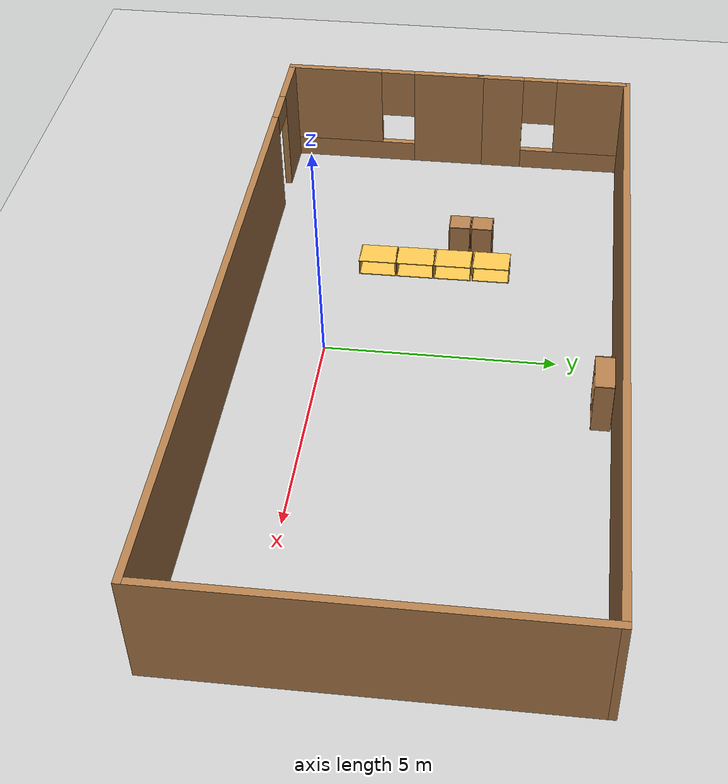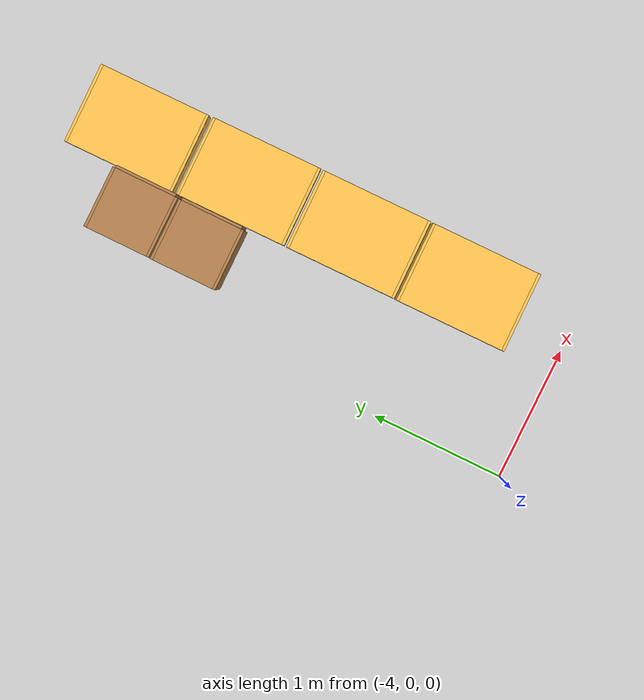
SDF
<sdf version="1.7">
 <world name="default">
  <model name="ground_plane">
   <pose>0 0 0 0 -0 1</pose>
   <static>1</static>
   <link name="link">
    <collision name="collision">
     <geometry><plane><normal>0 0 1</normal><size>100 100</size></plane></geometry>
     <surface>
      <contact><collide_bitmask>65535</collide_bitmask></contact>
      <friction><ode><mu>100</mu><mu2>50</mu2></ode></friction>
     </surface>
    </collision>
    <visual name="visual">
     <cast_shadows>0</cast_shadows>
     <geometry><plane><normal>0 0 1</normal><size>100 100</size></plane></geometry>
     <material>
      <script><uri>file://media/materials/scripts/gazebo.material</uri><name>Gazebo/Grey</name></script>
     </material>
    </visual>
   </link>
  </model>
  <model name="library">
   <pose>0.605 2.21 0 0 -0 0</pose>
   <link name="Wall_18">
    <pose>-7.925 -1.75 0 0 -0 -1.5708</pose>
    <visual name="Wall_18_Visual_0">
     <pose>-1.53224 0 1.25 0 -0 0</pose>
     <geometry><box><size>1.68552 0.15 2.5</size></box></geometry>
     <material>
      <script><uri>file://media/materials/scripts/gazebo.material</uri><name>Gazebo/Wood</name></script>
      <ambient>1 1 1 1</ambient>
     </material>
     <meta><layer>0</layer></meta>
    </visual>
    <collision name="Wall_18_Collision_0">
     <geometry><box><size>1.68552 0.15 2.5</size></box></geometry>
     <pose>-1.53224 0 1.25 0 -0 0</pose>
    </collision>
    <visual name="Wall_18_Visual_1">
     <pose>0.84276 0 0.25 0 -0 0</pose>
     <geometry><box><size>3.06448 0.15 0.5</size></box></geometry>
     <material>
      <script><uri>file://media/materials/scripts/gazebo.material</uri><name>Gazebo/Wood</name></script>
      <ambient>1 1 1 1</ambient>
     </material>
     <meta><layer>0</layer></meta>
    </visual>
    <collision name="Wall_18_Collision_1">
     <geometry><box><size>3.06448 0.15 0.5</size></box></geometry>
     <pose>0.84276 0 0.25 0 -0 0</pose>
    </collision>
    <visual name="Wall_18_Visual_2">
     <pose>1.24276 0 1.5 0 -0 0</pose>
     <geometry><box><size>2.26448 0.15 2</size></box></geometry>
     <material>
      <script><uri>file://media/materials/scripts/gazebo.material</uri><name>Gazebo/Wood</name></script>
      <ambient>1 1 1 1</ambient>
     </material>
     <meta><layer>0</layer></meta>
    </visual>
    <collision name="Wall_18_Collision_2">
     <geometry><box><size>2.26448 0.15 2</size></box></geometry>
     <pose>1.24276 0 1.5 0 -0 0</pose>
    </collision>
    <visual name="Wall_18_Visual_3">
     <pose>-0.289481 0 1.9 0 -0 0</pose>
     <geometry><box><size>0.8 0.15 1.2</size></box></geometry>
     <material>
      <script><uri>file://media/materials/scripts/gazebo.material</uri><name>Gazebo/Wood</name></script>
      <ambient>1 1 1 1</ambient>
     </material>
     <meta><layer>0</layer></meta>
    </visual>
    <collision name="Wall_18_Collision_3">
     <geometry><box><size>0.8 0.15 1.2</size></box></geometry>
     <pose>-0.289481 0 1.9 0 -0 0</pose>
    </collision>
   </link>
   <link name="Wall_19">
    <pose>-0 -4.05 0 0 -0 0</pose>
    <visual name="Wall_19_Visual_0">
     <pose>-7.26557 0 1.25 0 -0 0</pose>
     <geometry><box><size>1.46886 0.15 2.5</size></box></geometry>
     <material>
      <script><uri>file://media/materials/scripts/gazebo.material</uri><name>Gazebo/Wood</name></script>
      <ambient>1 1 1 1</ambient>
     </material>
     <meta><layer>0</layer></meta>
    </visual>
    <collision name="Wall_19_Collision_0">
     <geometry><box><size>1.46886 0.15 2.5</size></box></geometry>
     <pose>-7.26557 0 1.25 0 -0 0</pose>
    </collision>
    <visual name="Wall_19_Visual_1">
     <pose>1.18443 0 1.25 0 -0 0</pose>
     <geometry><box><size>13.6311 0.15 2.5</size></box></geometry>
     <material>
      <script><uri>file://media/materials/scripts/gazebo.material</uri><name>Gazebo/Wood</name></script>
      <ambient>1 1 1 1</ambient>
     </material>
     <meta><layer>0</layer></meta>
    </visual>
    <collision name="Wall_19_Collision_1">
     <geometry><box><size>13.6311 0.15 2.5</size></box></geometry>
     <pose>1.18443 0 1.25 0 -0 0</pose>
    </collision>
    <visual name="Wall_19_Visual_2">
     <pose>-6.08114 0 2.25 0 -0 0</pose>
     <geometry><box><size>0.9 0.15 0.5</size></box></geometry>
     <material>
      <script><uri>file://media/materials/scripts/gazebo.material</uri><name>Gazebo/Wood</name></script>
      <ambient>1 1 1 1</ambient>
     </material>
     <meta><layer>0</layer></meta>
    </visual>
    <collision name="Wall_19_Collision_2">
     <geometry><box><size>0.9 0.15 0.5</size></box></geometry>
     <pose>-6.08114 0 2.25 0 -0 0</pose>
    </collision>
   </link>
   <link name="Wall_20">
    <collision name="Wall_20_Collision">
     <geometry><box><size>8.25 0.15 2.5</size></box></geometry>
     <pose>0 0 1.25 0 -0 0</pose>
    </collision>
    <visual name="Wall_20_Visual">
     <pose>0 0 1.25 0 -0 0</pose>
     <geometry><box><size>8.25 0.15 2.5</size></box></geometry>
     <material>
      <script><uri>file://media/materials/scripts/gazebo.material</uri><name>Gazebo/Wood</name></script>
      <ambient>1 1 1 1</ambient>
     </material>
     <meta><layer>0</layer></meta>
    </visual>
    <pose>7.925 0 0 0 -0 1.5708</pose>
   </link>
   <link name="Wall_21">
    <collision name="Wall_21_Collision">
     <geometry><box><size>16.0003 0.15 2.5</size></box></geometry>
     <pose>0 0 1.25 0 -0 0</pose>
    </collision>
    <visual name="Wall_21_Visual">
     <pose>0 0 1.25 0 -0 0</pose>
     <geometry><box><size>16.0003 0.15 2.5</size></box></geometry>
     <material>
      <script><uri>file://media/materials/scripts/gazebo.material</uri><name>Gazebo/Wood</name></script>
      <ambient>1 1 1 1</ambient>
     </material>
     <meta><layer>0</layer></meta>
    </visual>
    <pose>-0 4.05 0 0 -0 3.14159</pose>
   </link>
   <link name="Wall_24">
    <pose>-7.925 2.3 0 0 -0 1.5708</pose>
    <visual name="Wall_24_Visual_0">
     <pose>-1.26657 0 1.25 0 -0 0</pose>
     <geometry><box><size>1.11687 0.15 2.5</size></box></geometry>
     <material>
      <script><uri>file://media/materials/scripts/gazebo.material</uri><name>Gazebo/Wood</name></script>
      <ambient>1 1 1 1</ambient>
     </material>
     <meta><layer>0</layer></meta>
    </visual>
    <collision name="Wall_24_Collision_0">
     <geometry><box><size>1.11687 0.15 2.5</size></box></geometry>
     <pose>-1.26657 0 1.25 0 -0 0</pose>
    </collision>
    <visual name="Wall_24_Visual_1">
     <pose>0.558433 0 0.25 0 -0 0</pose>
     <geometry><box><size>2.53313 0.15 0.5</size></box></geometry>
     <material>
      <script><uri>file://media/materials/scripts/gazebo.material</uri><name>Gazebo/Wood</name></script>
      <ambient>1 1 1 1</ambient>
     </material>
     <meta><layer>0</layer></meta>
    </visual>
    <collision name="Wall_24_Collision_1">
     <geometry><box><size>2.53313 0.15 0.5</size></box></geometry>
     <pose>0.558433 0 0.25 0 -0 0</pose>
    </collision>
    <visual name="Wall_24_Visual_2">
     <pose>0.958433 0 1.5 0 -0 0</pose>
     <geometry><box><size>1.73313 0.15 2</size></box></geometry>
     <material>
      <script><uri>file://media/materials/scripts/gazebo.material</uri><name>Gazebo/Wood</name></script>
      <ambient>1 1 1 1</ambient>
     </material>
     <meta><layer>0</layer></meta>
    </visual>
    <collision name="Wall_24_Collision_2">
     <geometry><box><size>1.73313 0.15 2</size></box></geometry>
     <pose>0.958433 0 1.5 0 -0 0</pose>
    </collision>
    <visual name="Wall_24_Visual_3">
     <pose>-0.308134 0 1.9 0 -0 0</pose>
     <geometry><box><size>0.8 0.15 1.2</size></box></geometry>
     <material>
      <script><uri>file://media/materials/scripts/gazebo.material</uri><name>Gazebo/Wood</name></script>
      <ambient>1 1 1 1</ambient>
     </material>
     <meta><layer>0</layer></meta>
    </visual>
    <collision name="Wall_24_Collision_3">
     <geometry><box><size>0.8 0.15 1.2</size></box></geometry>
     <pose>-0.308134 0 1.9 0 -0 0</pose>
    </collision>
   </link>
   <static>1</static>
  </model>
  <model name="cabinet_clone">
   <static>1</static>
   <link name="cabinet_bottom_plate">
    <inertial>
     <pose>0 0 -1 0 -0 0</pose>
     <inertia><ixx>2.05</ixx><ixy>0</ixy><ixz>0</ixz><iyy>2.05</iyy><iyz>0</iyz><izz>2.05</izz></inertia>
     <mass>25</mass>
    </inertial>
    <collision name="cabinet_bottom_plate_geom">
     <pose>0 0 0.01 0 -0 0</pose>
     <geometry><box><size>0.45 0.45 0.02</size></box></geometry>
    </collision>
    <visual name="cabinet_bottom_plate_geom_visual">
     <pose>0 0 0.01 0 -0 0</pose>
     <geometry><box><size>0.45 0.45 0.02</size></box></geometry>
     <material>
      <script><uri>file://media/materials/scripts/gazebo.material</uri><name>Gazebo/Wood</name></script>
     </material>
    </visual>
    <collision name="cabinet_bottom_plate_geom_cabinet_back_plate">
     <pose>0.235 0 0.51 0 -0 0</pose>
     <geometry><box><size>0.02 0.45 1.02</size></box></geometry>
    </collision>
    <visual name="cabinet_bottom_plate_geom_cabinet_back_plate_visual">
     <pose>0.235 0 0.51 0 -0 0</pose>
     <geometry><box><size>0.02 0.45 1.02</size></box></geometry>
     <material>
      <script><uri>file://media/materials/scripts/gazebo.material</uri><name>Gazebo/Wood</name></script>
     </material>
    </visual>
    <collision name="cabinet_bottom_plate_geom_cabinet_left_plate">
     <pose>0 0.235 0.51 0 -0 0</pose>
     <geometry><box><size>0.45 0.02 1.02</size></box></geometry>
    </collision>
    <visual name="cabinet_bottom_plate_geom_cabinet_left_plate_visual">
     <pose>0 0.235 0.51 0 -0 0</pose>
     <geometry><box><size>0.45 0.02 1.02</size></box></geometry>
     <material>
      <script><uri>file://media/materials/scripts/gazebo.material</uri><name>Gazebo/Wood</name></script>
     </material>
    </visual>
    <collision name="cabinet_bottom_plate_geom_cabinet_middle_plate">
     <pose>0 0 0.51 0 -0 0</pose>
     <geometry><box><size>0.45 0.45 0.02</size></box></geometry>
    </collision>
    <visual name="cabinet_bottom_plate_geom_cabinet_middle_plate_visual">
     <pose>0 0 0.51 0 -0 0</pose>
     <geometry><box><size>0.45 0.45 0.02</size></box></geometry>
     <material>
      <script><uri>file://media/materials/scripts/gazebo.material</uri><name>Gazebo/Wood</name></script>
     </material>
    </visual>
    <collision name="cabinet_bottom_plate_geom_cabinet_right_plate">
     <pose>0 -0.235 0.51 0 -0 0</pose>
     <geometry><box><size>0.45 0.02 1.02</size></box></geometry>
    </collision>
    <visual name="cabinet_bottom_plate_geom_cabinet_right_plate_visual">
     <pose>0 -0.235 0.51 0 -0 0</pose>
     <geometry><box><size>0.45 0.02 1.02</size></box></geometry>
     <material>
      <script><uri>file://media/materials/scripts/gazebo.material</uri><name>Gazebo/Wood</name></script>
     </material>
    </visual>
    <collision name="cabinet_bottom_plate_geom_cabinet_top_plate">
     <pose>0 0 1.01 0 -0 0</pose>
     <geometry><box><size>0.45 0.45 0.02</size></box></geometry>
    </collision>
    <visual name="cabinet_bottom_plate_geom_cabinet_top_plate_visual">
     <pose>0 0 1.01 0 -0 0</pose>
     <geometry><box><size>0.45 0.45 0.02</size></box></geometry>
     <material>
      <script><uri>file://media/materials/scripts/gazebo.material</uri><name>Gazebo/Wood</name></script>
     </material>
    </visual>
   </link>
   <pose>-3.44026 3.13711 0 0 -0 0</pose>
  </model>
  <model name="cabinet_clone_0">
   <static>1</static>
   <link name="cabinet_bottom_plate">
    <inertial>
     <pose>0 0 -1 0 -0 0</pose>
     <inertia><ixx>2.05</ixx><ixy>0</ixy><ixz>0</ixz><iyy>2.05</iyy><iyz>0</iyz><izz>2.05</izz></inertia>
     <mass>25</mass>
    </inertial>
    <collision name="cabinet_bottom_plate_geom">
     <pose>0 0 0.01 0 -0 0</pose>
     <geometry><box><size>0.45 0.45 0.02</size></box></geometry>
    </collision>
    <visual name="cabinet_bottom_plate_geom_visual">
     <pose>0 0 0.01 0 -0 0</pose>
     <geometry><box><size>0.45 0.45 0.02</size></box></geometry>
     <material>
      <script><uri>file://media/materials/scripts/gazebo.material</uri><name>Gazebo/Wood</name></script>
     </material>
    </visual>
    <collision name="cabinet_bottom_plate_geom_cabinet_back_plate">
     <pose>0.235 0 0.51 0 -0 0</pose>
     <geometry><box><size>0.02 0.45 1.02</size></box></geometry>
    </collision>
    <visual name="cabinet_bottom_plate_geom_cabinet_back_plate_visual">
     <pose>0.235 0 0.51 0 -0 0</pose>
     <geometry><box><size>0.02 0.45 1.02</size></box></geometry>
     <material>
      <script><uri>file://media/materials/scripts/gazebo.material</uri><name>Gazebo/Wood</name></script>
     </material>
    </visual>
    <collision name="cabinet_bottom_plate_geom_cabinet_left_plate">
     <pose>0 0.235 0.51 0 -0 0</pose>
     <geometry><box><size>0.45 0.02 1.02</size></box></geometry>
    </collision>
    <visual name="cabinet_bottom_plate_geom_cabinet_left_plate_visual">
     <pose>0 0.235 0.51 0 -0 0</pose>
     <geometry><box><size>0.45 0.02 1.02</size></box></geometry>
     <material>
      <script><uri>file://media/materials/scripts/gazebo.material</uri><name>Gazebo/Wood</name></script>
     </material>
    </visual>
    <collision name="cabinet_bottom_plate_geom_cabinet_middle_plate">
     <pose>0 0 0.51 0 -0 0</pose>
     <geometry><box><size>0.45 0.45 0.02</size></box></geometry>
    </collision>
    <visual name="cabinet_bottom_plate_geom_cabinet_middle_plate_visual">
     <pose>0 0 0.51 0 -0 0</pose>
     <geometry><box><size>0.45 0.45 0.02</size></box></geometry>
     <material>
      <script><uri>file://media/materials/scripts/gazebo.material</uri><name>Gazebo/Wood</name></script>
     </material>
    </visual>
    <collision name="cabinet_bottom_plate_geom_cabinet_right_plate">
     <pose>0 -0.235 0.51 0 -0 0</pose>
     <geometry><box><size>0.45 0.02 1.02</size></box></geometry>
    </collision>
    <visual name="cabinet_bottom_plate_geom_cabinet_right_plate_visual">
     <pose>0 -0.235 0.51 0 -0 0</pose>
     <geometry><box><size>0.45 0.02 1.02</size></box></geometry>
     <material>
      <script><uri>file://media/materials/scripts/gazebo.material</uri><name>Gazebo/Wood</name></script>
     </material>
    </visual>
    <collision name="cabinet_bottom_plate_geom_cabinet_top_plate">
     <pose>0 0 1.01 0 -0 0</pose>
     <geometry><box><size>0.45 0.45 0.02</size></box></geometry>
    </collision>
    <visual name="cabinet_bottom_plate_geom_cabinet_top_plate_visual">
     <pose>0 0 1.01 0 -0 0</pose>
     <geometry><box><size>0.45 0.45 0.02</size></box></geometry>
     <material>
      <script><uri>file://media/materials/scripts/gazebo.material</uri><name>Gazebo/Wood</name></script>
     </material>
    </visual>
   </link>
   <pose>-3.44236 2.63789 0 0 -0 0</pose>
  </model>
  <model name="Fridge_Cabinet_33x15_clone_1">
   <link name="Wall_17">
    <pose>0 0 0.01 0 -0 0</pose>
    <inertial>
     <mass>4.8627</mass>
     <inertia><ixx>0.146</ixx><iyy>0.4318</iyy><izz>0.2861</izz><ixy>0</ixy><ixz>0</ixz><iyz>0</iyz></inertia>
    </inertial>
    <collision name="Wall_17_Collision"><geometry><box><size>0.84 0.6 0.02</size></box></geometry></collision>
    <visual name="Wall_17_Visual">
     <geometry><box><size>0.84 0.6 0.02</size></box></geometry>
     <material>
      <script><uri>file://media/materials/scripts/gazebo.material</uri><name>Gazebo/Grey</name></script>
      <ambient>1 0.764706 0.305882 1</ambient>
     </material>
    </visual>
   </link>
   <joint name="17_21" type="fixed">
    <pose>0.42 0 0 0 -0 0</pose>
    <parent>Wall_21</parent>
    <child>Wall_17</child>
    <axis><xyz>1 0 0</xyz><limit><lower>-1e+16</lower><upper>1e+16</upper></limit></axis>
   </joint>
   <joint name="17_19" type="fixed">
    <pose>-0.42 0 0 0 -0 0</pose>
    <parent>Wall_19</parent>
    <child>Wall_17</child>
    <axis><xyz>1 0 0</xyz><limit><lower>-1e+16</lower><upper>1e+16</upper></limit></axis>
   </joint>
   <joint name="17_25" type="fixed">
    <pose>0 -0.3 0 0 -0 0</pose>
    <parent>Wall_25</parent>
    <child>Wall_17</child>
    <axis><xyz>0 1 0</xyz><limit><lower>-1e+16</lower><upper>1e+16</upper></limit></axis>
   </joint>
   <link name="Wall_19">
    <pose>-0.41 0 0.192 0 -0 0</pose>
    <inertial>
     <mass>2.223</mass>
     <inertia><ixx>0.0668</ixx><iyy>0.094</iyy><izz>0.0274</izz><ixy>0</ixy><ixz>0</ixz><iyz>0</iyz></inertia>
    </inertial>
    <collision name="Wall_19_Collision"><geometry><box><size>0.02 0.6 0.384</size></box></geometry></collision>
    <visual name="Wall_19_Visual">
     <geometry><box><size>0.02 0.6 0.384</size></box></geometry>
     <material>
      <script><uri>file://media/materials/scripts/gazebo.material</uri><name>Gazebo/Grey</name></script>
      <ambient>1 0.764706 0.305882 1</ambient>
     </material>
    </visual>
   </link>
   <link name="Wall_21">
    <pose>0.41 0 0.192 0 -0 0</pose>
    <inertial>
     <mass>2.223</mass>
     <inertia><ixx>0.0668</ixx><iyy>0.094</iyy><izz>0.0274</izz><ixy>0</ixy><ixz>0</ixz><iyz>0</iyz></inertia>
    </inertial>
    <collision name="Wall_21_Collision"><geometry><box><size>0.02 0.6 0.384</size></box></geometry></collision>
    <visual name="Wall_21_Visual">
     <geometry><box><size>0.02 0.6 0.384</size></box></geometry>
     <material>
      <script><uri>file://media/materials/scripts/gazebo.material</uri><name>Gazebo/Grey</name></script>
      <ambient>1 0.764706 0.305882 1</ambient>
     </material>
    </visual>
   </link>
   <link name="Wall_23">
    <pose>0 0 0.374 0 -0 0</pose>
    <inertial>
     <mass>4.8627</mass>
     <inertia><ixx>0.146</ixx><iyy>0.4318</iyy><izz>0.2861</izz><ixy>0</ixy><ixz>0</ixz><iyz>0</iyz></inertia>
    </inertial>
    <collision name="Wall_23_Collision"><geometry><box><size>0.84 0.6 0.02</size></box></geometry></collision>
    <visual name="Wall_23_Visual">
     <geometry><box><size>0.84 0.6 0.02</size></box></geometry>
     <material>
      <script><uri>file://media/materials/scripts/gazebo.material</uri><name>Gazebo/Grey</name></script>
      <ambient>1 0.764706 0.305882 1</ambient>
     </material>
    </visual>
   </link>
   <joint name="23_21" type="fixed">
    <pose>0.42 0 0 0 -0 0</pose>
    <parent>Wall_21</parent>
    <child>Wall_23</child>
    <axis><xyz>0 0 1</xyz><limit><lower>-1e+16</lower><upper>1e+16</upper></limit></axis>
   </joint>
   <joint name="23_19" type="fixed">
    <pose>-0.42 0 0 0 -0 0</pose>
    <parent>Wall_19</parent>
    <child>Wall_23</child>
    <axis><xyz>0 0 1</xyz><limit><lower>-1e+16</lower><upper>1e+16</upper></limit></axis>
   </joint>
   <joint name="23_25" type="fixed">
    <pose>0 -0.3 0 0 -0 0</pose>
    <parent>Wall_25</parent>
    <child>Wall_23</child>
    <axis><xyz>0 0 1</xyz><limit><lower>-1e+16</lower><upper>1e+16</upper></limit></axis>
   </joint>
   <link name="Wall_25">
    <pose>0 -0.29 0.19 0 -0 0</pose>
    <inertial>
     <mass>3.0651</mass>
     <inertia><ixx>0.037</ixx><iyy>0.1786</iyy><izz>0.2154</izz><ixy>0</ixy><ixz>0</ixz><iyz>0</iyz></inertia>
    </inertial>
    <collision name="Wall_25_Collision"><geometry><box><size>0.836 0.02 0.38</size></box></geometry></collision>
    <visual name="Wall_25_Visual">
     <geometry><box><size>0.836 0.02 0.38</size></box></geometry>
     <material>
      <script><uri>file://media/materials/scripts/gazebo.material</uri><name>Gazebo/Grey</name></script>
      <ambient>1 0.764706 0.305882 1</ambient>
     </material>
    </visual>
   </link>
   <joint name="25_21" type="fixed">
    <pose>0.42 0 0 0 -0 0</pose>
    <parent>Wall_21</parent>
    <child>Wall_25</child>
    <axis><xyz>0 1 0</xyz><limit><lower>-1e+16</lower><upper>1e+16</upper></limit></axis>
   </joint>
   <joint name="25_19" type="fixed">
    <pose>-0.42 0 0 0 -0 0</pose>
    <parent>Wall_19</parent>
    <child>Wall_25</child>
    <axis><xyz>0 1 0</xyz><limit><lower>-1e+16</lower><upper>1e+16</upper></limit></axis>
   </joint>
   <static>1</static>
   <pose>-2.88307 0.818762 0 0 0 -1.56459</pose>
  </model>
  <model name="Fridge_Cabinet_33x15_clone_2">
   <link name="Wall_17">
    <pose>0 0 0.01 0 -0 0</pose>
    <inertial>
     <mass>4.8627</mass>
     <inertia><ixx>0.146</ixx><iyy>0.4318</iyy><izz>0.2861</izz><ixy>0</ixy><ixz>0</ixz><iyz>0</iyz></inertia>
    </inertial>
    <collision name="Wall_17_Collision"><geometry><box><size>0.84 0.6 0.02</size></box></geometry></collision>
    <visual name="Wall_17_Visual">
     <geometry><box><size>0.84 0.6 0.02</size></box></geometry>
     <material>
      <script><uri>file://media/materials/scripts/gazebo.material</uri><name>Gazebo/Grey</name></script>
      <ambient>1 0.764706 0.305882 1</ambient>
     </material>
    </visual>
   </link>
   <joint name="17_21" type="fixed">
    <pose>0.42 0 0 0 -0 0</pose>
    <parent>Wall_21</parent>
    <child>Wall_17</child>
    <axis><xyz>1 0 0</xyz><limit><lower>-1e+16</lower><upper>1e+16</upper></limit></axis>
   </joint>
   <joint name="17_19" type="fixed">
    <pose>-0.42 0 0 0 -0 0</pose>
    <parent>Wall_19</parent>
    <child>Wall_17</child>
    <axis><xyz>1 0 0</xyz><limit><lower>-1e+16</lower><upper>1e+16</upper></limit></axis>
   </joint>
   <joint name="17_25" type="fixed">
    <pose>0 -0.3 0 0 -0 0</pose>
    <parent>Wall_25</parent>
    <child>Wall_17</child>
    <axis><xyz>0 1 0</xyz><limit><lower>-1e+16</lower><upper>1e+16</upper></limit></axis>
   </joint>
   <link name="Wall_19">
    <pose>-0.41 0 0.192 0 -0 0</pose>
    <inertial>
     <mass>2.223</mass>
     <inertia><ixx>0.0668</ixx><iyy>0.094</iyy><izz>0.0274</izz><ixy>0</ixy><ixz>0</ixz><iyz>0</iyz></inertia>
    </inertial>
    <collision name="Wall_19_Collision"><geometry><box><size>0.02 0.6 0.384</size></box></geometry></collision>
    <visual name="Wall_19_Visual">
     <geometry><box><size>0.02 0.6 0.384</size></box></geometry>
     <material>
      <script><uri>file://media/materials/scripts/gazebo.material</uri><name>Gazebo/Grey</name></script>
      <ambient>1 0.764706 0.305882 1</ambient>
     </material>
    </visual>
   </link>
   <link name="Wall_21">
    <pose>0.41 0 0.192 0 -0 0</pose>
    <inertial>
     <mass>2.223</mass>
     <inertia><ixx>0.0668</ixx><iyy>0.094</iyy><izz>0.0274</izz><ixy>0</ixy><ixz>0</ixz><iyz>0</iyz></inertia>
    </inertial>
    <collision name="Wall_21_Collision"><geometry><box><size>0.02 0.6 0.384</size></box></geometry></collision>
    <visual name="Wall_21_Visual">
     <geometry><box><size>0.02 0.6 0.384</size></box></geometry>
     <material>
      <script><uri>file://media/materials/scripts/gazebo.material</uri><name>Gazebo/Grey</name></script>
      <ambient>1 0.764706 0.305882 1</ambient>
     </material>
    </visual>
   </link>
   <link name="Wall_23">
    <pose>0 0 0.374 0 -0 0</pose>
    <inertial>
     <mass>4.8627</mass>
     <inertia><ixx>0.146</ixx><iyy>0.4318</iyy><izz>0.2861</izz><ixy>0</ixy><ixz>0</ixz><iyz>0</iyz></inertia>
    </inertial>
    <collision name="Wall_23_Collision"><geometry><box><size>0.84 0.6 0.02</size></box></geometry></collision>
    <visual name="Wall_23_Visual">
     <geometry><box><size>0.84 0.6 0.02</size></box></geometry>
     <material>
      <script><uri>file://media/materials/scripts/gazebo.material</uri><name>Gazebo/Grey</name></script>
      <ambient>1 0.764706 0.305882 1</ambient>
     </material>
    </visual>
   </link>
   <joint name="23_21" type="fixed">
    <pose>0.42 0 0 0 -0 0</pose>
    <parent>Wall_21</parent>
    <child>Wall_23</child>
    <axis><xyz>0 0 1</xyz><limit><lower>-1e+16</lower><upper>1e+16</upper></limit></axis>
   </joint>
   <joint name="23_19" type="fixed">
    <pose>-0.42 0 0 0 -0 0</pose>
    <parent>Wall_19</parent>
    <child>Wall_23</child>
    <axis><xyz>0 0 1</xyz><limit><lower>-1e+16</lower><upper>1e+16</upper></limit></axis>
   </joint>
   <joint name="23_25" type="fixed">
    <pose>0 -0.3 0 0 -0 0</pose>
    <parent>Wall_25</parent>
    <child>Wall_23</child>
    <axis><xyz>0 0 1</xyz><limit><lower>-1e+16</lower><upper>1e+16</upper></limit></axis>
   </joint>
   <link name="Wall_25">
    <pose>0 -0.29 0.19 0 -0 0</pose>
    <inertial>
     <mass>3.0651</mass>
     <inertia><ixx>0.037</ixx><iyy>0.1786</iyy><izz>0.2154</izz><ixy>0</ixy><ixz>0</ixz><iyz>0</iyz></inertia>
    </inertial>
    <collision name="Wall_25_Collision"><geometry><box><size>0.836 0.02 0.38</size></box></geometry></collision>
    <visual name="Wall_25_Visual">
     <geometry><box><size>0.836 0.02 0.38</size></box></geometry>
     <material>
      <script><uri>file://media/materials/scripts/gazebo.material</uri><name>Gazebo/Grey</name></script>
      <ambient>1 0.764706 0.305882 1</ambient>
     </material>
    </visual>
   </link>
   <joint name="25_21" type="fixed">
    <pose>0.42 0 0 0 -0 0</pose>
    <parent>Wall_21</parent>
    <child>Wall_25</child>
    <axis><xyz>0 1 0</xyz><limit><lower>-1e+16</lower><upper>1e+16</upper></limit></axis>
   </joint>
   <joint name="25_19" type="fixed">
    <pose>-0.42 0 0 0 -0 0</pose>
    <parent>Wall_19</parent>
    <child>Wall_25</child>
    <axis><xyz>0 1 0</xyz><limit><lower>-1e+16</lower><upper>1e+16</upper></limit></axis>
   </joint>
   <static>1</static>
   <pose>-2.88688 1.67641 0 0 0 -1.56459</pose>
  </model>
  <model name="Fridge_Cabinet_33x15_clone_3">
   <link name="Wall_17">
    <pose>0 0 0.01 0 -0 0</pose>
    <inertial>
     <mass>4.8627</mass>
     <inertia><ixx>0.146</ixx><iyy>0.4318</iyy><izz>0.2861</izz><ixy>0</ixy><ixz>0</ixz><iyz>0</iyz></inertia>
    </inertial>
    <collision name="Wall_17_Collision"><geometry><box><size>0.84 0.6 0.02</size></box></geometry></collision>
    <visual name="Wall_17_Visual">
     <geometry><box><size>0.84 0.6 0.02</size></box></geometry>
     <material>
      <script><uri>file://media/materials/scripts/gazebo.material</uri><name>Gazebo/Grey</name></script>
      <ambient>1 0.764706 0.305882 1</ambient>
     </material>
    </visual>
   </link>
   <joint name="17_21" type="fixed">
    <pose>0.42 0 0 0 -0 0</pose>
    <parent>Wall_21</parent>
    <child>Wall_17</child>
    <axis><xyz>1 0 0</xyz><limit><lower>-1e+16</lower><upper>1e+16</upper></limit></axis>
   </joint>
   <joint name="17_19" type="fixed">
    <pose>-0.42 0 0 0 -0 0</pose>
    <parent>Wall_19</parent>
    <child>Wall_17</child>
    <axis><xyz>1 0 0</xyz><limit><lower>-1e+16</lower><upper>1e+16</upper></limit></axis>
   </joint>
   <joint name="17_25" type="fixed">
    <pose>0 -0.3 0 0 -0 0</pose>
    <parent>Wall_25</parent>
    <child>Wall_17</child>
    <axis><xyz>0 1 0</xyz><limit><lower>-1e+16</lower><upper>1e+16</upper></limit></axis>
   </joint>
   <link name="Wall_19">
    <pose>-0.41 0 0.192 0 -0 0</pose>
    <inertial>
     <mass>2.223</mass>
     <inertia><ixx>0.0668</ixx><iyy>0.094</iyy><izz>0.0274</izz><ixy>0</ixy><ixz>0</ixz><iyz>0</iyz></inertia>
    </inertial>
    <collision name="Wall_19_Collision"><geometry><box><size>0.02 0.6 0.384</size></box></geometry></collision>
    <visual name="Wall_19_Visual">
     <geometry><box><size>0.02 0.6 0.384</size></box></geometry>
     <material>
      <script><uri>file://media/materials/scripts/gazebo.material</uri><name>Gazebo/Grey</name></script>
      <ambient>1 0.764706 0.305882 1</ambient>
     </material>
    </visual>
   </link>
   <link name="Wall_21">
    <pose>0.41 0 0.192 0 -0 0</pose>
    <inertial>
     <mass>2.223</mass>
     <inertia><ixx>0.0668</ixx><iyy>0.094</iyy><izz>0.0274</izz><ixy>0</ixy><ixz>0</ixz><iyz>0</iyz></inertia>
    </inertial>
    <collision name="Wall_21_Collision"><geometry><box><size>0.02 0.6 0.384</size></box></geometry></collision>
    <visual name="Wall_21_Visual">
     <geometry><box><size>0.02 0.6 0.384</size></box></geometry>
     <material>
      <script><uri>file://media/materials/scripts/gazebo.material</uri><name>Gazebo/Grey</name></script>
      <ambient>1 0.764706 0.305882 1</ambient>
     </material>
    </visual>
   </link>
   <link name="Wall_23">
    <pose>0 0 0.374 0 -0 0</pose>
    <inertial>
     <mass>4.8627</mass>
     <inertia><ixx>0.146</ixx><iyy>0.4318</iyy><izz>0.2861</izz><ixy>0</ixy><ixz>0</ixz><iyz>0</iyz></inertia>
    </inertial>
    <collision name="Wall_23_Collision"><geometry><box><size>0.84 0.6 0.02</size></box></geometry></collision>
    <visual name="Wall_23_Visual">
     <geometry><box><size>0.84 0.6 0.02</size></box></geometry>
     <material>
      <script><uri>file://media/materials/scripts/gazebo.material</uri><name>Gazebo/Grey</name></script>
      <ambient>1 0.764706 0.305882 1</ambient>
     </material>
    </visual>
   </link>
   <joint name="23_21" type="fixed">
    <pose>0.42 0 0 0 -0 0</pose>
    <parent>Wall_21</parent>
    <child>Wall_23</child>
    <axis><xyz>0 0 1</xyz><limit><lower>-1e+16</lower><upper>1e+16</upper></limit></axis>
   </joint>
   <joint name="23_19" type="fixed">
    <pose>-0.42 0 0 0 -0 0</pose>
    <parent>Wall_19</parent>
    <child>Wall_23</child>
    <axis><xyz>0 0 1</xyz><limit><lower>-1e+16</lower><upper>1e+16</upper></limit></axis>
   </joint>
   <joint name="23_25" type="fixed">
    <pose>0 -0.3 0 0 -0 0</pose>
    <parent>Wall_25</parent>
    <child>Wall_23</child>
    <axis><xyz>0 0 1</xyz><limit><lower>-1e+16</lower><upper>1e+16</upper></limit></axis>
   </joint>
   <link name="Wall_25">
    <pose>0 -0.29 0.19 0 -0 0</pose>
    <inertial>
     <mass>3.0651</mass>
     <inertia><ixx>0.037</ixx><iyy>0.1786</iyy><izz>0.2154</izz><ixy>0</ixy><ixz>0</ixz><iyz>0</iyz></inertia>
    </inertial>
    <collision name="Wall_25_Collision"><geometry><box><size>0.836 0.02 0.38</size></box></geometry></collision>
    <visual name="Wall_25_Visual">
     <geometry><box><size>0.836 0.02 0.38</size></box></geometry>
     <material>
      <script><uri>file://media/materials/scripts/gazebo.material</uri><name>Gazebo/Grey</name></script>
      <ambient>1 0.764706 0.305882 1</ambient>
     </material>
    </visual>
   </link>
   <joint name="25_21" type="fixed">
    <pose>0.42 0 0 0 -0 0</pose>
    <parent>Wall_21</parent>
    <child>Wall_25</child>
    <axis><xyz>0 1 0</xyz><limit><lower>-1e+16</lower><upper>1e+16</upper></limit></axis>
   </joint>
   <joint name="25_19" type="fixed">
    <pose>-0.42 0 0 0 -0 0</pose>
    <parent>Wall_19</parent>
    <child>Wall_25</child>
    <axis><xyz>0 1 0</xyz><limit><lower>-1e+16</lower><upper>1e+16</upper></limit></axis>
   </joint>
   <static>1</static>
   <pose>-2.8911 2.53345 0 0 0 -1.56459</pose>
  </model>
  <model name="Fridge_Cabinet_33x15_clone_4">
   <link name="Wall_17">
    <pose>0 0 0.01 0 -0 0</pose>
    <inertial>
     <mass>4.8627</mass>
     <inertia><ixx>0.146</ixx><iyy>0.4318</iyy><izz>0.2861</izz><ixy>0</ixy><ixz>0</ixz><iyz>0</iyz></inertia>
    </inertial>
    <collision name="Wall_17_Collision"><geometry><box><size>0.84 0.6 0.02</size></box></geometry></collision>
    <visual name="Wall_17_Visual">
     <geometry><box><size>0.84 0.6 0.02</size></box></geometry>
     <material>
      <script><uri>file://media/materials/scripts/gazebo.material</uri><name>Gazebo/Grey</name></script>
      <ambient>1 0.764706 0.305882 1</ambient>
     </material>
    </visual>
   </link>
   <joint name="17_21" type="fixed">
    <pose>0.42 0 0 0 -0 0</pose>
    <parent>Wall_21</parent>
    <child>Wall_17</child>
    <axis><xyz>1 0 0</xyz><limit><lower>-1e+16</lower><upper>1e+16</upper></limit></axis>
   </joint>
   <joint name="17_19" type="fixed">
    <pose>-0.42 0 0 0 -0 0</pose>
    <parent>Wall_19</parent>
    <child>Wall_17</child>
    <axis><xyz>1 0 0</xyz><limit><lower>-1e+16</lower><upper>1e+16</upper></limit></axis>
   </joint>
   <joint name="17_25" type="fixed">
    <pose>0 -0.3 0 0 -0 0</pose>
    <parent>Wall_25</parent>
    <child>Wall_17</child>
    <axis><xyz>0 1 0</xyz><limit><lower>-1e+16</lower><upper>1e+16</upper></limit></axis>
   </joint>
   <link name="Wall_19">
    <pose>-0.41 0 0.192 0 -0 0</pose>
    <inertial>
     <mass>2.223</mass>
     <inertia><ixx>0.0668</ixx><iyy>0.094</iyy><izz>0.0274</izz><ixy>0</ixy><ixz>0</ixz><iyz>0</iyz></inertia>
    </inertial>
    <collision name="Wall_19_Collision"><geometry><box><size>0.02 0.6 0.384</size></box></geometry></collision>
    <visual name="Wall_19_Visual">
     <geometry><box><size>0.02 0.6 0.384</size></box></geometry>
     <material>
      <script><uri>file://media/materials/scripts/gazebo.material</uri><name>Gazebo/Grey</name></script>
      <ambient>1 0.764706 0.305882 1</ambient>
     </material>
    </visual>
   </link>
   <link name="Wall_21">
    <pose>0.41 0 0.192 0 -0 0</pose>
    <inertial>
     <mass>2.223</mass>
     <inertia><ixx>0.0668</ixx><iyy>0.094</iyy><izz>0.0274</izz><ixy>0</ixy><ixz>0</ixz><iyz>0</iyz></inertia>
    </inertial>
    <collision name="Wall_21_Collision"><geometry><box><size>0.02 0.6 0.384</size></box></geometry></collision>
    <visual name="Wall_21_Visual">
     <geometry><box><size>0.02 0.6 0.384</size></box></geometry>
     <material>
      <script><uri>file://media/materials/scripts/gazebo.material</uri><name>Gazebo/Grey</name></script>
      <ambient>1 0.764706 0.305882 1</ambient>
     </material>
    </visual>
   </link>
   <link name="Wall_23">
    <pose>0 0 0.374 0 -0 0</pose>
    <inertial>
     <mass>4.8627</mass>
     <inertia><ixx>0.146</ixx><iyy>0.4318</iyy><izz>0.2861</izz><ixy>0</ixy><ixz>0</ixz><iyz>0</iyz></inertia>
    </inertial>
    <collision name="Wall_23_Collision"><geometry><box><size>0.84 0.6 0.02</size></box></geometry></collision>
    <visual name="Wall_23_Visual">
     <geometry><box><size>0.84 0.6 0.02</size></box></geometry>
     <material>
      <script><uri>file://media/materials/scripts/gazebo.material</uri><name>Gazebo/Grey</name></script>
      <ambient>1 0.764706 0.305882 1</ambient>
     </material>
    </visual>
   </link>
   <joint name="23_21" type="fixed">
    <pose>0.42 0 0 0 -0 0</pose>
    <parent>Wall_21</parent>
    <child>Wall_23</child>
    <axis><xyz>0 0 1</xyz><limit><lower>-1e+16</lower><upper>1e+16</upper></limit></axis>
   </joint>
   <joint name="23_19" type="fixed">
    <pose>-0.42 0 0 0 -0 0</pose>
    <parent>Wall_19</parent>
    <child>Wall_23</child>
    <axis><xyz>0 0 1</xyz><limit><lower>-1e+16</lower><upper>1e+16</upper></limit></axis>
   </joint>
   <joint name="23_25" type="fixed">
    <pose>0 -0.3 0 0 -0 0</pose>
    <parent>Wall_25</parent>
    <child>Wall_23</child>
    <axis><xyz>0 0 1</xyz><limit><lower>-1e+16</lower><upper>1e+16</upper></limit></axis>
   </joint>
   <link name="Wall_25">
    <pose>0 -0.29 0.19 0 -0 0</pose>
    <inertial>
     <mass>3.0651</mass>
     <inertia><ixx>0.037</ixx><iyy>0.1786</iyy><izz>0.2154</izz><ixy>0</ixy><ixz>0</ixz><iyz>0</iyz></inertia>
    </inertial>
    <collision name="Wall_25_Collision"><geometry><box><size>0.836 0.02 0.38</size></box></geometry></collision>
    <visual name="Wall_25_Visual">
     <geometry><box><size>0.836 0.02 0.38</size></box></geometry>
     <material>
      <script><uri>file://media/materials/scripts/gazebo.material</uri><name>Gazebo/Grey</name></script>
      <ambient>1 0.764706 0.305882 1</ambient>
     </material>
    </visual>
   </link>
   <joint name="25_21" type="fixed">
    <pose>0.42 0 0 0 -0 0</pose>
    <parent>Wall_21</parent>
    <child>Wall_25</child>
    <axis><xyz>0 1 0</xyz><limit><lower>-1e+16</lower><upper>1e+16</upper></limit></axis>
   </joint>
   <joint name="25_19" type="fixed">
    <pose>-0.42 0 0 0 -0 0</pose>
    <parent>Wall_19</parent>
    <child>Wall_25</child>
    <axis><xyz>0 1 0</xyz><limit><lower>-1e+16</lower><upper>1e+16</upper></limit></axis>
   </joint>
   <static>1</static>
   <pose>-2.89867 3.4046 0 0 0 -1.56459</pose>
  </model>
  <model name="bookshelf">
   <static>1</static>
   <link name="link">
    <inertial><mass>1</mass></inertial>
    <collision name="back">
     <pose>0 0.005 0.6 0 -0 0</pose>
     <geometry><box><size>0.9 0.01 1.2</size></box></geometry>
    </collision>
    <visual name="visual1">
     <pose>0 0.005 0.6 0 -0 0</pose>
     <geometry><box><size>0.9 0.01 1.2</size></box></geometry>
     <material>
      <script><uri>file://media/materials/scripts/gazebo.material</uri><name>Gazebo/Wood</name></script>
     </material>
    </visual>
    <collision name="left_side">
     <pose>0.45 -0.195 0.6 0 -0 0</pose>
     <geometry><box><size>0.02 0.4 1.2</size></box></geometry>
    </collision>
    <visual name="visual2">
     <pose>0.45 -0.195 0.6 0 -0 0</pose>
     <geometry><box><size>0.02 0.4 1.2</size></box></geometry>
     <material>
      <script><uri>file://media/materials/scripts/gazebo.material</uri><name>Gazebo/Wood</name></script>
     </material>
    </visual>
    <collision name="right_side">
     <pose>-0.45 -0.195 0.6 0 -0 0</pose>
     <geometry><box><size>0.02 0.4 1.2</size></box></geometry>
    </collision>
    <visual name="visual3">
     <pose>-0.45 -0.195 0.6 0 -0 0</pose>
     <geometry><box><size>0.02 0.4 1.2</size></box></geometry>
     <material>
      <script><uri>file://media/materials/scripts/gazebo.material</uri><name>Gazebo/Wood</name></script>
     </material>
    </visual>
    <collision name="bottom">
     <pose>0 -0.195 0.03 0 -0 0</pose>
     <geometry><box><size>0.88 0.4 0.06</size></box></geometry>
    </collision>
    <visual name="visual4">
     <pose>0 -0.195 0.03 0 -0 0</pose>
     <geometry><box><size>0.88 0.4 0.06</size></box></geometry>
     <material>
      <script><uri>file://media/materials/scripts/gazebo.material</uri><name>Gazebo/Wood</name></script>
     </material>
    </visual>
    <collision name="top">
     <pose>0 -0.195 1.19 0 -0 0</pose>
     <geometry><box><size>0.88 0.4 0.02</size></box></geometry>
    </collision>
    <visual name="visual5">
     <pose>0 -0.195 1.19 0 -0 0</pose>
     <geometry><box><size>0.88 0.4 0.02</size></box></geometry>
     <material>
      <script><uri>file://media/materials/scripts/gazebo.material</uri><name>Gazebo/Wood</name></script>
     </material>
    </visual>
    <collision name="low_shelf">
     <pose>0 -0.195 0.43 0 -0 0</pose>
     <geometry><box><size>0.88 0.4 0.02</size></box></geometry>
    </collision>
    <visual name="visual6">
     <pose>0 -0.195 0.43 0 -0 0</pose>
     <geometry><box><size>0.88 0.4 0.02</size></box></geometry>
     <material>
      <script><uri>file://media/materials/scripts/gazebo.material</uri><name>Gazebo/Wood</name></script>
     </material>
    </visual>
    <collision name="high_shelf">
     <pose>0 -0.195 0.8 0 -0 0</pose>
     <geometry><box><size>0.88 0.4 0.02</size></box></geometry>
    </collision>
    <visual name="visual7">
     <pose>0 -0.195 0.8 0 -0 0</pose>
     <geometry><box><size>0.88 0.4 0.02</size></box></geometry>
     <material>
      <script><uri>file://media/materials/scripts/gazebo.material</uri><name>Gazebo/Wood</name></script>
     </material>
    </visual>
   </link>
   <pose>1.40901 6.15178 0 0 -0 0</pose>
  </model>
 </world>
</sdf>
